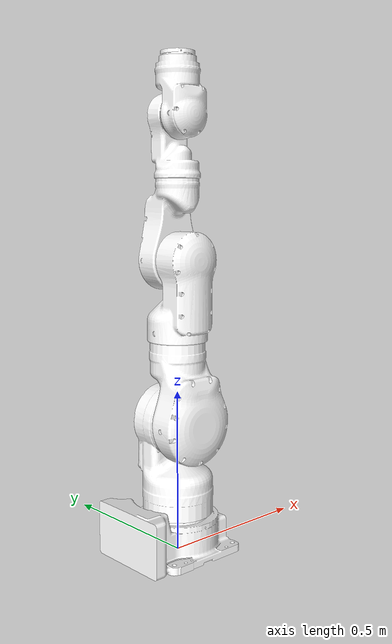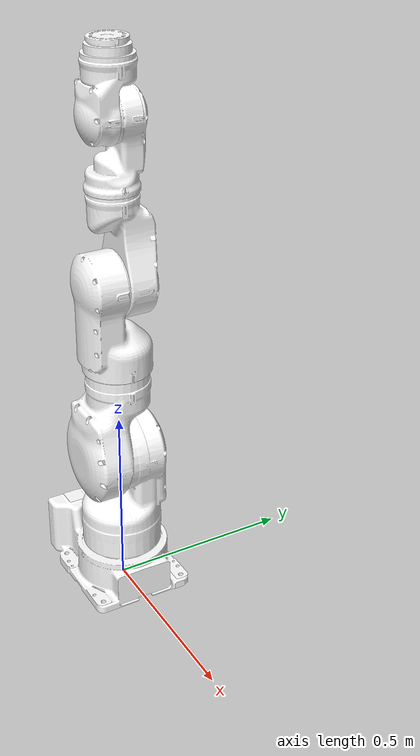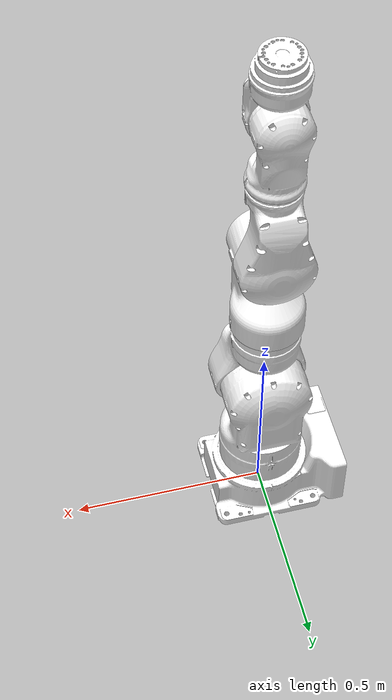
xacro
<?xml version="1.0"?>
<robot name="sia20" xmlns:xacro="http://www.ros.org/wiki/xacro">

	<!-- include macro file-->
	<xacro:include filename="common.urdf.xacro"/>

	<!-- base_link-->
	<link name="base_link">
		<inertial>
			<mass value="1.0"/>
			<!--xacro:inertia_origin_base_link/-->
			<xacro:default_origin/>
			<xacro:default_mesh name="base_link"/>
			<xacro:default_inertial/>
		</inertial>
		<visual>
			<xacro:default_origin/>
			<xacro:default_mesh name="base_link"/>
			<material name="white"/>
		</visual>
		<collision>
			<xacro:default_origin/>
			<xacro:default_mesh name="base_link"/>
		</collision>
	</link>

	<!-- link_s-->
	<link name="link_s">
		<inertial>
			<mass value="1.0"/>
			<xacro:inertia_origin_link_s/>
			<xacro:default_mesh name="link_s"/>
			<xacro:default_inertial/>
		</inertial>
		<visual>
			<xacro:default_origin/>
			<xacro:default_mesh name="link_s"/>
			<material name="white"/>
		</visual>
		<collision>
			<xacro:default_origin/>
			<xacro:default_mesh name="link_s"/>
		</collision>
	</link>

	<!-- joint_s (base_link | joint_s) -->
	<joint name="joint_s" type="revolute">
		<xacro:origin_joint_s/>
		<parent link="base_link"/>
		<child  link="link_s"/>
		<axis xyz="0 1 0"/>
		<limit lower="-3.1415" upper="3.1415" effort="1000" velocity="2.2698"/>
		<xacro:default_joint_misc/>
	</joint>
	<xacro:default_transmission suffix="joint_s"/>

	<!-- link_l-->
	<link name="link_l">
		<inertial>
			<mass value="1.0"/>
			<xacro:inertia_origin_link_l/>
			<xacro:default_mesh name="link_l"/>
			<xacro:default_inertial/>
		</inertial>
		<visual>
			<xacro:default_origin/>
			<xacro:default_mesh name="link_l"/>
			<material name="white"/>
		</visual>
		<collision>
			<xacro:default_origin/>
			<xacro:default_mesh name="link_l"/>
		</collision>
	</link>

	<!-- joint_l (link_s | joint_l) -->
	<joint name="joint_l" type="revolute">
		<xacro:origin_joint_l/>
		<parent link="link_s"/>
		<child  link="link_l"/>
		<axis xyz="0 0 1"/>
		<limit lower="-1.9198" upper="1.9198" effort="1000" velocity="2.2698"/>
		<xacro:default_joint_misc/>
	</joint>
	<xacro:default_transmission suffix="joint_l"/>

	<!-- link_e-->
	<link name="link_e">
		<inertial>
			<mass value="1.0"/>
			<xacro:inertia_origin_link_e/>
			<xacro:default_mesh name="link_e"/>
			<xacro:default_inertial/>
		</inertial>
		<visual>
			<xacro:default_origin/>
			<xacro:default_mesh name="link_e"/>
			<material name="white"/>
		</visual>
		<collision>
			<xacro:default_origin/>
			<xacro:default_mesh name="link_e"/>
		</collision>
	</link>

	<!-- joint_e (link_l | joint_e) -->
	<joint name="joint_e" type="revolute">
		<xacro:origin_joint_e/>
		<parent link="link_l"/>
		<child  link="link_e"/>
		<axis xyz="0 1 0"/>
		<limit lower="-2.967" upper="2.967" effort="1000" velocity="2.2698"/>
		<xacro:default_joint_misc/>
	</joint>
	<xacro:default_transmission suffix="joint_e"/>

	<!-- link_u-->
	<link name="link_u">
		<inertial>
			<mass value="1.0"/>
			<xacro:inertia_origin_link_u/>
			<xacro:default_mesh name="link_u"/>
			<xacro:default_inertial/>
		</inertial>
		<visual>
			<xacro:default_origin/>
			<xacro:default_mesh name="link_u"/>
			<material name="white"/>
		</visual>
		<collision>
			<xacro:default_origin/>
			<xacro:default_mesh name="link_u"/>
		</collision>
	</link>

	<!-- joint_u (link_e | joint_u) -->
	<joint name="joint_u" type="revolute">
		<xacro:origin_joint_u/>
		<parent link="link_e"/>
		<child  link="link_u"/>
		<axis xyz="0 0 1"/>
		<limit lower="-2.967" upper="2.967" effort="1000" velocity="2.2698"/>
		<xacro:default_joint_misc/>
	</joint>
	<xacro:default_transmission suffix="joint_u"/>

	<!-- link_r-->
	<link name="link_r">
		<inertial>
			<mass value="1.0"/>
			<xacro:inertia_origin_link_r/>
			<xacro:default_mesh name="link_r"/>
			<xacro:default_inertial/>
		</inertial>
		<visual>
			<xacro:default_origin/>
			<xacro:default_mesh name="link_r"/>
			<material name="white"/>
		</visual>
		<collision>
			<xacro:default_origin/>
			<xacro:default_mesh name="link_r"/>
		</collision>
	</link>

	<!-- joint_r (link_u | joint_r) -->
	<joint name="joint_r" type="revolute">
		<xacro:origin_joint_r/>
		<parent link="link_u"/>
		<child  link="link_r"/>
		<axis xyz="0 1 0"/>
		<limit lower="-3.1415" upper="3.1415" effort="1000" velocity="3.4906"/>
		<xacro:default_joint_misc/>
	</joint>
	<xacro:default_transmission suffix="joint_r"/>

	<!-- link_b-->
	<link name="link_b">
		<inertial>
			<mass value="1.0"/>
			<xacro:inertia_origin_link_b/>
			<xacro:default_mesh name="link_b"/>
			<xacro:default_inertial/>
		</inertial>
		<visual>
			<xacro:default_origin/>
			<xacro:default_mesh name="link_b"/>
			<material name="white"/>
		</visual>
		<collision>
			<xacro:default_origin/>
			<xacro:default_mesh name="link_b"/>
		</collision>
	</link>

	<!-- joint_b (link_r | joint_b) -->
	<joint name="joint_b" type="revolute">
		<xacro:origin_joint_b/>
		<parent link="link_r"/>
		<child  link="link_b"/>
		<axis xyz="0 0 1"/>
		<limit lower="-1.9198" upper="1.9198" effort="1000" velocity="3.4906"/>
		<xacro:default_joint_misc/>
	</joint>
	<xacro:default_transmission suffix="joint_b"/>

	<!-- link_t-->
	<link name="link_t">
		<inertial>
			<mass value="1.0"/>
			<xacro:inertia_origin_link_t/>
			<xacro:default_mesh name="link_t"/>
			<xacro:default_inertial/>
		</inertial>
		<visual>
			<xacro:default_origin/>
			<xacro:default_mesh name="link_t"/>
			<material name="white"/>
		</visual>
		<collision>
			<xacro:default_origin/>
			<xacro:default_mesh name="link_t"/>
		</collision>
	</link>

	<!-- joint_t (link_b | joint_t) -->
	<joint name="joint_t" type="revolute">
		<xacro:origin_joint_t/>
		<parent link="link_b"/>
		<child  link="link_t"/>
		<axis xyz="0 1 0"/>
		<limit lower="-3.1415" upper="3.1415" effort="1000" velocity="7.0"/>
		<xacro:default_joint_misc/>
	</joint>
	<xacro:default_transmission suffix="joint_t"/>

	<!-- link tool0-->
	<link name="tool0"/>

	<!-- joint link_t-tool0 -->
	<joint name="link_t-tool0" type="fixed">
		<origin rpy="0 0 -3.1415" xyz="0 0 0"/>
		<parent link="link_t"/>
		<child  link="tool0"/>
	</joint>

	<!-- link fixed in order to stand rigidly in gazebo -->
	<link name="world"/>
	<joint name="fixed" type="fixed">
		<parent link="world"/>
		<child  link="base_link"/>
	</joint>

	<!-- ros_control_plugin-->
	<gazebo>
		<plugin name="gazebo_ros_control" filename="libgazebo_ros_control.so">
			<robotNamespace>/sia20</robotNamespace>
		</plugin>
		<mu1>0.1</mu1>
		<mu2>0.1</mu2>
	</gazebo>

</robot>

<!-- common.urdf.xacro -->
<robot name="sia20" xmlns:xacro="http://www.ros.org/wiki/xacro">

	<!-- color of robot. important-->
	<material name="white">
		<color rgba="1 1 1 1"/>
	</material>

	<!-- Defitnitions of convinience macro -->
	<xacro:macro name="default_mesh" params="name">
		<geometry>
			<mesh filename="package://sia20_description/meshes/${name}.STL"/>
		</geometry>
	</xacro:macro>

	<xacro:macro name="default_inertial">
		<inertia
			ixx="0.001"
			ixy="0.001"
			ixz="0.001"
			iyy="0.001"
			iyz="0.001"
			izz="0.001"/>
	</xacro:macro>

	<xacro:macro name="default_origin">
		<origin xyz="0 0 0" rpy="0 0 0" />
	</xacro:macro>

	<xacro:macro name="inertia_origin_base_link">
		<origin xyz="-0.05327 0.066798 0.00014271" rpy="0 0 0" />
	</xacro:macro>

	<xacro:macro name="inertia_origin_link_s">
        <origin xyz="7.8023E-07 0.18911 -0.015611" rpy="0 0 0" />
	</xacro:macro>

	<xacro:macro name="inertia_origin_link_l">
        <origin xyz="1.6057E-05 0.10201 0.041335" rpy="0 0 0" />
	</xacro:macro>

	<xacro:macro name="inertia_origin_link_e">
        <origin xyz="3.9186E-05 0.16471 0.020774" rpy="0 0 0" />
	</xacro:macro>

	<xacro:macro name="inertia_origin_link_u">
        <origin xyz="-7.9992E-07 0.08472 -0.032542" rpy="0 0 0" />
	</xacro:macro>

	<xacro:macro name="inertia_origin_link_r">
        <origin xyz="4.8678E-06 0.12569 -0.02028" rpy="0 0 0" />
	</xacro:macro>

	<xacro:macro name="inertia_origin_link_b">
        <origin xyz="5.1667E-06 0.069849 0.019496" rpy="0 0 0" />
	</xacro:macro>

	<xacro:macro name="inertia_origin_link_t">
        <origin xyz="-0.00019051 0.0087466 -2.475E-05" rpy="0 0 0" />
	</xacro:macro>

	<xacro:macro name="default_joint_misc">
	</xacro:macro>

	<xacro:macro name="origin_joint_s">
        <origin xyz="0 0 0.112" rpy="1.5708 0 0" />
	</xacro:macro>

	<xacro:macro name="origin_joint_l">
        <origin xyz="0 0.298 0" rpy="0 0 0" />
	</xacro:macro>

	<xacro:macro name="origin_joint_e">
        <origin xyz="0 0.247135547651375 0" rpy="0 0 0" />
	</xacro:macro>

	<xacro:macro name="origin_joint_u">
        <origin xyz="0 0.242864452348634 0" rpy="0 0 0" />
	</xacro:macro>

	<xacro:macro name="origin_joint_r">
        <origin xyz="0 0.23899999999989 0" rpy="0 0 0" />
	</xacro:macro>

	<xacro:macro name="origin_joint_b">
        <origin xyz="0 0.181 0" rpy="0 0 0" />
	</xacro:macro>

	<xacro:macro name="origin_joint_t">
        <origin xyz="0 0.164069662461231 0.0015" rpy="0 0 0" />
	</xacro:macro>

	<xacro:macro name="default_transmission" params="suffix">
		<transmission name="${suffix}_trans">
			<type>transimission_interface/SimpleTransmission</type>
			<joint name="${suffix}">
				<hardwareInterface>hardware_interface/PositionJointInterface</hardwareInterface>
			</joint>
			<actuator name="${suffix}_motor">
				<hardwareInterface>hardware_interface/PositionJointInterface</hardwareInterface>
				<mechanicalReduction>1</mechanicalReduction>
			</actuator>
		</transmission>
	</xacro:macro>

</robot>
